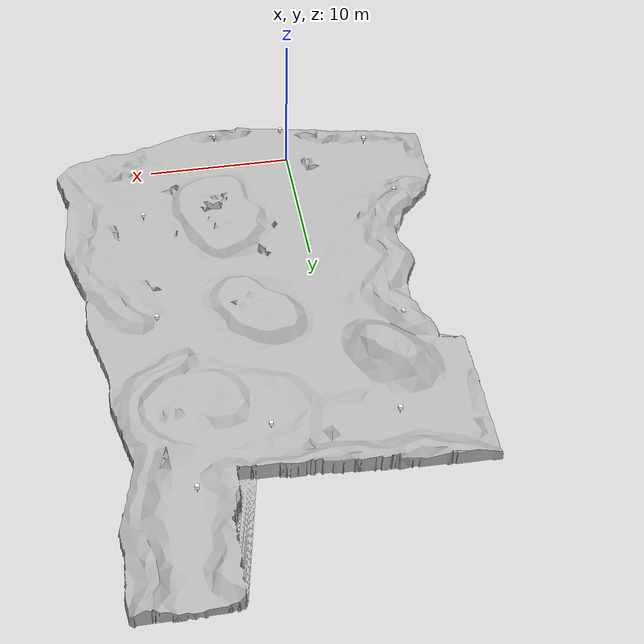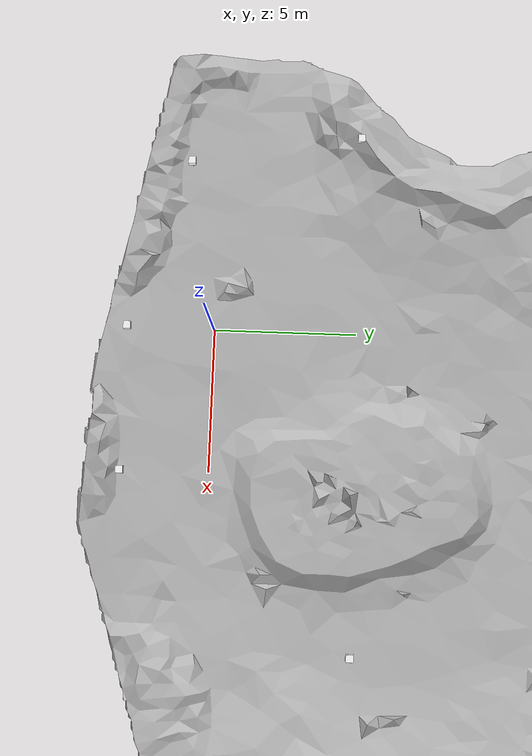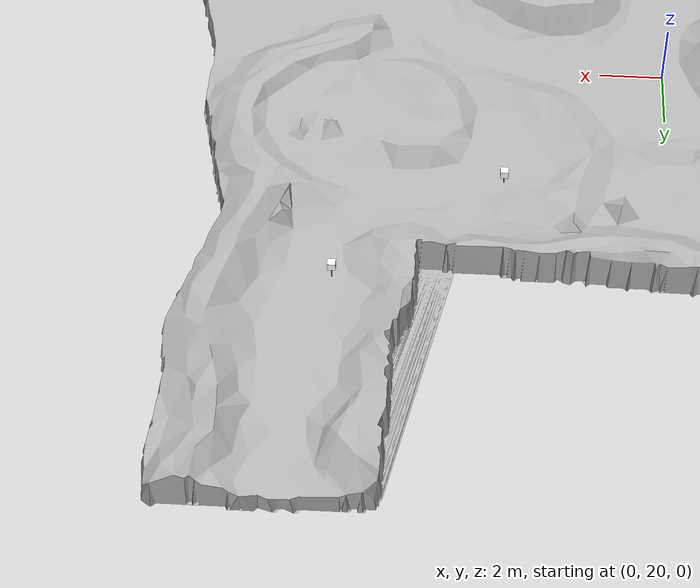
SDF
<?xml version="1.0"?>

<sdf version="1.6">
  <world name="marsyard">

    <include>
        <uri>model://marsyard2024</uri>
        <name>marsyard2024</name>
    </include>

    <physics name="default_physics" type="bullet">
      <max_step_size>0.01</max_step_size>
      <real_time_factor>1.0</real_time_factor>
      <real_time_update_rate>100</real_time_update_rate>
      <ode>
        <solver>
          <type>quick</type>
          <iterations>20</iterations>
          <sor>1.3</sor>
        </solver>
        <constraints>
          <cfm>0.0001</cfm>
          <erp>0.2</erp>
          <contact_max_correcting_vel>10</contact_max_correcting_vel>
          <contact_surface_layer>0.001</contact_surface_layer>
        </constraints>
      </ode>
    </physics>

    <scene>
        <ambient>0.8 0.8 0.8 1</ambient>
        <background>0 0 0 1</background>
        <grid>0</grid>
        <shadows>0</shadows>
    </scene>

    <plugin filename="gz-sim-contact-system" name="gz::sim::systems::Contact" />
    <plugin filename="gz-sim-imu-system" name="gz::sim::systems::Imu" />
    <plugin filename="gz-sim-physics-system" name="gz::sim::systems::Physics" />
    <plugin filename="gz-sim-scene-broadcaster-system" name="gz::sim::systems::SceneBroadcaster" />
    <plugin filename="gz-sim-sensors-system" name="gz::sim::systems::Sensors" />
    <plugin filename="gz-sim-user-commands-system" name="gz::sim::systems::UserCommands" />

    <light type="directional" name="sun">
      <cast_shadows>false</cast_shadows>
      <pose>0 20 20 0.1 0.1 0</pose>
      <diffuse>1 1 1 1</diffuse>
      <specular>1 1 1 1</specular>
      <attenuation>
        <range>300</range>
        <constant>0.9</constant>
        <linear>0.01</linear>
        <quadratic>0.001</quadratic>
      </attenuation>
      <direction>0.1 0.1 -1</direction>
    </light>

    <!-- South -->
    <include>
      <uri>model://aruco_marker_0</uri>
      <name>marker_0</name>
      <pose>0 -3 0 0 0 0</pose>
    </include>
    <include>
      <uri>model://aruco_marker_1</uri>
      <name>marker_1</name>
      <pose>5 -3 0 0 0 0</pose>
    </include>

    <!-- West -->
    <include>
      <uri>model://aruco_marker_2</uri>
      <name>marker_2</name>
      <pose>-7 5 0 0 0 -1.5708</pose>
    </include>
    <include>
      <uri>model://aruco_marker_3</uri>
      <name>marker_3</name>
      <pose>-5 17 0 0 0 -1.5708</pose>
    </include>

    <!-- North -->
    <include>
      <uri>model://aruco_marker_4</uri>
      <name>marker_4</name>
      <pose>-3 25 0 0 0 3.14159</pose>
    </include>
    <include>
      <uri>model://aruco_marker_5</uri>
      <name>marker_5</name>
      <pose>5 25 0 0 0 3.14159</pose>
    </include>

    <!-- East -->
    <include>
      <uri>model://aruco_marker_6</uri>
      <name>marker_6</name>
      <pose>11 15 0 0 0 1.5708</pose>
    </include>
    <include>
      <uri>model://aruco_marker_7</uri>
      <name>marker_7</name>
      <pose>11 5 0 0 0 1.5708</pose>
    </include>

    <!-- NE -->
    <include>
      <uri>model://aruco_marker_8</uri>
      <name>marker_8</name>
      <pose>10 29 0 0 0 3.14159</pose>
    </include>

    <!-- SW -->
    <include>
      <uri>model://aruco_marker_9</uri>
      <name>marker_9</name>
      <pose>-6 -1 0 0 0 0</pose>
    </include>

  </world>
</sdf>

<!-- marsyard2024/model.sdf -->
<sdf version="1.6">

<model name="marsyard2024">
  <static>true</static>
  <link name="scene_link">

    <!-- Visual -->
    <visual name="visual">
      <geometry>
        <mesh>
          <uri>model://marsyard2024/meshes/marsyard2024_processed.dae</uri>
        </mesh>
      </geometry>
    </visual>

    <!-- Collision -->
    <collision name="collision">
      <geometry>
        <mesh>
          <uri>model://marsyard2024/meshes/marsyard2024_collision.stl</uri>
        </mesh>
      </geometry>
      <surface>
        <contact>
          <ode>
            <max_vel>0.1</max_vel>
            <min_depth>0.001</min_depth>
          </ode>
        </contact>
      </surface>
    </collision>

  </link>
</model>

</sdf>

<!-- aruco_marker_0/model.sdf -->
<sdf version="1.6">
  <model name="aruco_marker_0">
    <static>true</static>
    <link name="link">

      <!-- عصاية -->
      <visual name="pole">
        <pose>0 0 0.2 0 0 0</pose>
        <geometry>
          <cylinder>
            <radius>0.015</radius>
            <length>0.4</length>
          </cylinder>
        </geometry>
        <material>
          <ambient>0.6 0.4 0.2 1</ambient>
          <diffuse>0.6 0.4 0.2 1</diffuse>
        </material>
      </visual>

      <!-- البوكس الأبيض -->
      <visual name="box">
        <pose>0 0 0.55 0 0 0</pose>
        <geometry>
          <box>
            <size>0.25 0.25 0.25</size>
          </box>
        </geometry>
        <material>
          <ambient>1 1 1 1</ambient>
          <diffuse>1 1 1 1</diffuse>
        </material>
      </visual>

      <!-- وجه أمامي +Y -->
      <visual name="face_front">
        <pose>0 -0.126 0.55 0 0 0</pose>
        <geometry><box><size>0.24 0.001 0.24</size></box></geometry>
        <material>
          <diffuse>1 1 1 1</diffuse>
          <pbr><metal>
            <albedo_map>model://aruco_marker_0/meshes/marker_0.png</albedo_map>
          </metal></pbr>
        </material>
      </visual>

      <!-- وجه خلفي -Y -->
      <visual name="face_back">
        <pose>0 0.126 0.55 0 0 3.14159</pose>
        <geometry><box><size>0.24 0.001 0.24</size></box></geometry>
        <material>
          <diffuse>1 1 1 1</diffuse>
          <pbr><metal>
            <albedo_map>model://aruco_marker_0/meshes/marker_0.png</albedo_map>
          </metal></pbr>
        </material>
      </visual>

      <!-- وجه يمين +X -->
      <visual name="face_right">
        <pose>0.126 0 0.55 0 0 1.5708</pose>
        <geometry><box><size>0.24 0.001 0.24</size></box></geometry>
        <material>
          <diffuse>1 1 1 1</diffuse>
          <pbr><metal>
            <albedo_map>model://aruco_marker_0/meshes/marker_0.png</albedo_map>
          </metal></pbr>
        </material>
      </visual>

      <!-- وجه شمال -X -->
      <visual name="face_left">
        <pose>-0.126 0 0.55 0 0 -1.5708</pose>
        <geometry><box><size>0.24 0.001 0.24</size></box></geometry>
        <material>
          <diffuse>1 1 1 1</diffuse>
          <pbr><metal>
            <albedo_map>model://aruco_marker_0/meshes/marker_0.png</albedo_map>
          </metal></pbr>
        </material>
      </visual>

    </link>
  </model>
</sdf>

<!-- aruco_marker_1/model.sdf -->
<sdf version="1.6">
  <model name="aruco_marker_1">
    <static>true</static>
    <link name="link">

      <!-- عصاية -->
      <visual name="pole">
        <pose>0 0 0.2 0 0 0</pose>
        <geometry>
          <cylinder>
            <radius>0.015</radius>
            <length>0.4</length>
          </cylinder>
        </geometry>
        <material>
          <ambient>0.6 0.4 0.2 1</ambient>
          <diffuse>0.6 0.4 0.2 1</diffuse>
        </material>
      </visual>

      <!-- البوكس الأبيض -->
      <visual name="box">
        <pose>0 0 0.55 0 0 0</pose>
        <geometry>
          <box>
            <size>0.25 0.25 0.25</size>
          </box>
        </geometry>
        <material>
          <ambient>1 1 1 1</ambient>
          <diffuse>1 1 1 1</diffuse>
        </material>
      </visual>

      <!-- وجه أمامي +Y -->
      <visual name="face_front">
        <pose>0 -0.126 0.55 0 0 0</pose>
        <geometry><box><size>0.24 0.001 0.24</size></box></geometry>
        <material>
          <diffuse>1 1 1 1</diffuse>
          <pbr><metal>
            <albedo_map>model://aruco_marker_1/meshes/marker_1.png</albedo_map>
          </metal></pbr>
        </material>
      </visual>

      <!-- وجه خلفي -Y -->
      <visual name="face_back">
        <pose>0 0.126 0.55 0 0 3.14159</pose>
        <geometry><box><size>0.24 0.001 0.24</size></box></geometry>
        <material>
          <diffuse>1 1 1 1</diffuse>
          <pbr><metal>
            <albedo_map>model://aruco_marker_1/meshes/marker_1.png</albedo_map>
          </metal></pbr>
        </material>
      </visual>

      <!-- وجه يمين +X -->
      <visual name="face_right">
        <pose>0.126 0 0.55 0 0 1.5708</pose>
        <geometry><box><size>0.24 0.001 0.24</size></box></geometry>
        <material>
          <diffuse>1 1 1 1</diffuse>
          <pbr><metal>
            <albedo_map>model://aruco_marker_1/meshes/marker_1.png</albedo_map>
          </metal></pbr>
        </material>
      </visual>

      <!-- وجه شمال -X -->
      <visual name="face_left">
        <pose>-0.126 0 0.55 0 0 -1.5708</pose>
        <geometry><box><size>0.24 0.001 0.24</size></box></geometry>
        <material>
          <diffuse>1 1 1 1</diffuse>
          <pbr><metal>
            <albedo_map>model://aruco_marker_1/meshes/marker_1.png</albedo_map>
          </metal></pbr>
        </material>
      </visual>

    </link>
  </model>
</sdf>

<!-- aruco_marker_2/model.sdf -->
<sdf version="1.6">
  <model name="aruco_marker_2">
    <static>true</static>
    <link name="link">

      <!-- عصاية -->
      <visual name="pole">
        <pose>0 0 0.2 0 0 0</pose>
        <geometry>
          <cylinder>
            <radius>0.015</radius>
            <length>0.4</length>
          </cylinder>
        </geometry>
        <material>
          <ambient>0.6 0.4 0.2 1</ambient>
          <diffuse>0.6 0.4 0.2 1</diffuse>
        </material>
      </visual>

      <!-- البوكس الأبيض -->
      <visual name="box">
        <pose>0 0 0.55 0 0 0</pose>
        <geometry>
          <box>
            <size>0.25 0.25 0.25</size>
          </box>
        </geometry>
        <material>
          <ambient>1 1 1 1</ambient>
          <diffuse>1 1 1 1</diffuse>
        </material>
      </visual>

      <!-- وجه أمامي +Y -->
      <visual name="face_front">
        <pose>0 -0.126 0.55 0 0 0</pose>
        <geometry><box><size>0.24 0.001 0.24</size></box></geometry>
        <material>
          <diffuse>1 1 1 1</diffuse>
          <pbr><metal>
            <albedo_map>model://aruco_marker_2/meshes/marker_2.png</albedo_map>
          </metal></pbr>
        </material>
      </visual>

      <!-- وجه خلفي -Y -->
      <visual name="face_back">
        <pose>0 0.126 0.55 0 0 3.14159</pose>
        <geometry><box><size>0.24 0.001 0.24</size></box></geometry>
        <material>
          <diffuse>1 1 1 1</diffuse>
          <pbr><metal>
            <albedo_map>model://aruco_marker_2/meshes/marker_2.png</albedo_map>
          </metal></pbr>
        </material>
      </visual>

      <!-- وجه يمين +X -->
      <visual name="face_right">
        <pose>0.126 0 0.55 0 0 1.5708</pose>
        <geometry><box><size>0.24 0.001 0.24</size></box></geometry>
        <material>
          <diffuse>1 1 1 1</diffuse>
          <pbr><metal>
            <albedo_map>model://aruco_marker_2/meshes/marker_2.png</albedo_map>
          </metal></pbr>
        </material>
      </visual>

      <!-- وجه شمال -X -->
      <visual name="face_left">
        <pose>-0.126 0 0.55 0 0 -1.5708</pose>
        <geometry><box><size>0.24 0.001 0.24</size></box></geometry>
        <material>
          <diffuse>1 1 1 1</diffuse>
          <pbr><metal>
            <albedo_map>model://aruco_marker_2/meshes/marker_2.png</albedo_map>
          </metal></pbr>
        </material>
      </visual>

    </link>
  </model>
</sdf>

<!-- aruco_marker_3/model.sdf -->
<sdf version="1.6">
  <model name="aruco_marker_3">
    <static>true</static>
    <link name="link">

      <!-- عصاية -->
      <visual name="pole">
        <pose>0 0 0.2 0 0 0</pose>
        <geometry>
          <cylinder>
            <radius>0.015</radius>
            <length>0.4</length>
          </cylinder>
        </geometry>
        <material>
          <ambient>0.6 0.4 0.2 1</ambient>
          <diffuse>0.6 0.4 0.2 1</diffuse>
        </material>
      </visual>

      <!-- البوكس الأبيض -->
      <visual name="box">
        <pose>0 0 0.55 0 0 0</pose>
        <geometry>
          <box>
            <size>0.25 0.25 0.25</size>
          </box>
        </geometry>
        <material>
          <ambient>1 1 1 1</ambient>
          <diffuse>1 1 1 1</diffuse>
        </material>
      </visual>

      <!-- وجه أمامي +Y -->
      <visual name="face_front">
        <pose>0 -0.126 0.55 0 0 0</pose>
        <geometry><box><size>0.24 0.001 0.24</size></box></geometry>
        <material>
          <diffuse>1 1 1 1</diffuse>
          <pbr><metal>
            <albedo_map>model://aruco_marker_3/meshes/marker_3.png</albedo_map>
          </metal></pbr>
        </material>
      </visual>

      <!-- وجه خلفي -Y -->
      <visual name="face_back">
        <pose>0 0.126 0.55 0 0 3.14159</pose>
        <geometry><box><size>0.24 0.001 0.24</size></box></geometry>
        <material>
          <diffuse>1 1 1 1</diffuse>
          <pbr><metal>
            <albedo_map>model://aruco_marker_3/meshes/marker_3.png</albedo_map>
          </metal></pbr>
        </material>
      </visual>

      <!-- وجه يمين +X -->
      <visual name="face_right">
        <pose>0.126 0 0.55 0 0 1.5708</pose>
        <geometry><box><size>0.24 0.001 0.24</size></box></geometry>
        <material>
          <diffuse>1 1 1 1</diffuse>
          <pbr><metal>
            <albedo_map>model://aruco_marker_3/meshes/marker_3.png</albedo_map>
          </metal></pbr>
        </material>
      </visual>

      <!-- وجه شمال -X -->
      <visual name="face_left">
        <pose>-0.126 0 0.55 0 0 -1.5708</pose>
        <geometry><box><size>0.24 0.001 0.24</size></box></geometry>
        <material>
          <diffuse>1 1 1 1</diffuse>
          <pbr><metal>
            <albedo_map>model://aruco_marker_3/meshes/marker_3.png</albedo_map>
          </metal></pbr>
        </material>
      </visual>

    </link>
  </model>
</sdf>

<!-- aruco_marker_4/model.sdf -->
<sdf version="1.6">
  <model name="aruco_marker_4">
    <static>true</static>
    <link name="link">

      <!-- عصاية -->
      <visual name="pole">
        <pose>0 0 0.2 0 0 0</pose>
        <geometry>
          <cylinder>
            <radius>0.015</radius>
            <length>0.4</length>
          </cylinder>
        </geometry>
        <material>
          <ambient>0.6 0.4 0.2 1</ambient>
          <diffuse>0.6 0.4 0.2 1</diffuse>
        </material>
      </visual>

      <!-- البوكس الأبيض -->
      <visual name="box">
        <pose>0 0 0.55 0 0 0</pose>
        <geometry>
          <box>
            <size>0.25 0.25 0.25</size>
          </box>
        </geometry>
        <material>
          <ambient>1 1 1 1</ambient>
          <diffuse>1 1 1 1</diffuse>
        </material>
      </visual>

      <!-- وجه أمامي +Y -->
      <visual name="face_front">
        <pose>0 -0.126 0.55 0 0 0</pose>
        <geometry><box><size>0.24 0.001 0.24</size></box></geometry>
        <material>
          <diffuse>1 1 1 1</diffuse>
          <pbr><metal>
            <albedo_map>model://aruco_marker_4/meshes/marker_4.png</albedo_map>
          </metal></pbr>
        </material>
      </visual>

      <!-- وجه خلفي -Y -->
      <visual name="face_back">
        <pose>0 0.126 0.55 0 0 3.14159</pose>
        <geometry><box><size>0.24 0.001 0.24</size></box></geometry>
        <material>
          <diffuse>1 1 1 1</diffuse>
          <pbr><metal>
            <albedo_map>model://aruco_marker_4/meshes/marker_4.png</albedo_map>
          </metal></pbr>
        </material>
      </visual>

      <!-- وجه يمين +X -->
      <visual name="face_right">
        <pose>0.126 0 0.55 0 0 1.5708</pose>
        <geometry><box><size>0.24 0.001 0.24</size></box></geometry>
        <material>
          <diffuse>1 1 1 1</diffuse>
          <pbr><metal>
            <albedo_map>model://aruco_marker_4/meshes/marker_4.png</albedo_map>
          </metal></pbr>
        </material>
      </visual>

      <!-- وجه شمال -X -->
      <visual name="face_left">
        <pose>-0.126 0 0.55 0 0 -1.5708</pose>
        <geometry><box><size>0.24 0.001 0.24</size></box></geometry>
        <material>
          <diffuse>1 1 1 1</diffuse>
          <pbr><metal>
            <albedo_map>model://aruco_marker_4/meshes/marker_4.png</albedo_map>
          </metal></pbr>
        </material>
      </visual>

    </link>
  </model>
</sdf>

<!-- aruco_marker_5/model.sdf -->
<sdf version="1.6">
  <model name="aruco_marker_5">
    <static>true</static>
    <link name="link">

      <!-- عصاية -->
      <visual name="pole">
        <pose>0 0 0.2 0 0 0</pose>
        <geometry>
          <cylinder>
            <radius>0.015</radius>
            <length>0.4</length>
          </cylinder>
        </geometry>
        <material>
          <ambient>0.6 0.4 0.2 1</ambient>
          <diffuse>0.6 0.4 0.2 1</diffuse>
        </material>
      </visual>

      <!-- البوكس الأبيض -->
      <visual name="box">
        <pose>0 0 0.55 0 0 0</pose>
        <geometry>
          <box>
            <size>0.25 0.25 0.25</size>
          </box>
        </geometry>
        <material>
          <ambient>1 1 1 1</ambient>
          <diffuse>1 1 1 1</diffuse>
        </material>
      </visual>

      <!-- وجه أمامي +Y -->
      <visual name="face_front">
        <pose>0 -0.126 0.55 0 0 0</pose>
        <geometry><box><size>0.24 0.001 0.24</size></box></geometry>
        <material>
          <diffuse>1 1 1 1</diffuse>
          <pbr><metal>
            <albedo_map>model://aruco_marker_5/meshes/marker_5.png</albedo_map>
          </metal></pbr>
        </material>
      </visual>

      <!-- وجه خلفي -Y -->
      <visual name="face_back">
        <pose>0 0.126 0.55 0 0 3.14159</pose>
        <geometry><box><size>0.24 0.001 0.24</size></box></geometry>
        <material>
          <diffuse>1 1 1 1</diffuse>
          <pbr><metal>
            <albedo_map>model://aruco_marker_5/meshes/marker_5.png</albedo_map>
          </metal></pbr>
        </material>
      </visual>

      <!-- وجه يمين +X -->
      <visual name="face_right">
        <pose>0.126 0 0.55 0 0 1.5708</pose>
        <geometry><box><size>0.24 0.001 0.24</size></box></geometry>
        <material>
          <diffuse>1 1 1 1</diffuse>
          <pbr><metal>
            <albedo_map>model://aruco_marker_5/meshes/marker_5.png</albedo_map>
          </metal></pbr>
        </material>
      </visual>

      <!-- وجه شمال -X -->
      <visual name="face_left">
        <pose>-0.126 0 0.55 0 0 -1.5708</pose>
        <geometry><box><size>0.24 0.001 0.24</size></box></geometry>
        <material>
          <diffuse>1 1 1 1</diffuse>
          <pbr><metal>
            <albedo_map>model://aruco_marker_5/meshes/marker_5.png</albedo_map>
          </metal></pbr>
        </material>
      </visual>

    </link>
  </model>
</sdf>

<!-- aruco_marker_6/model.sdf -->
<sdf version="1.6">
  <model name="aruco_marker_6">
    <static>true</static>
    <link name="link">

      <!-- عصاية -->
      <visual name="pole">
        <pose>0 0 0.2 0 0 0</pose>
        <geometry>
          <cylinder>
            <radius>0.015</radius>
            <length>0.4</length>
          </cylinder>
        </geometry>
        <material>
          <ambient>0.6 0.4 0.2 1</ambient>
          <diffuse>0.6 0.4 0.2 1</diffuse>
        </material>
      </visual>

      <!-- البوكس الأبيض -->
      <visual name="box">
        <pose>0 0 0.55 0 0 0</pose>
        <geometry>
          <box>
            <size>0.25 0.25 0.25</size>
          </box>
        </geometry>
        <material>
          <ambient>1 1 1 1</ambient>
          <diffuse>1 1 1 1</diffuse>
        </material>
      </visual>

      <!-- وجه أمامي +Y -->
      <visual name="face_front">
        <pose>0 -0.126 0.55 0 0 0</pose>
        <geometry><box><size>0.24 0.001 0.24</size></box></geometry>
        <material>
          <diffuse>1 1 1 1</diffuse>
          <pbr><metal>
            <albedo_map>model://aruco_marker_6/meshes/marker_6.png</albedo_map>
          </metal></pbr>
        </material>
      </visual>

      <!-- وجه خلفي -Y -->
      <visual name="face_back">
        <pose>0 0.126 0.55 0 0 3.14159</pose>
        <geometry><box><size>0.24 0.001 0.24</size></box></geometry>
        <material>
          <diffuse>1 1 1 1</diffuse>
          <pbr><metal>
            <albedo_map>model://aruco_marker_6/meshes/marker_6.png</albedo_map>
          </metal></pbr>
        </material>
      </visual>

      <!-- وجه يمين +X -->
      <visual name="face_right">
        <pose>0.126 0 0.55 0 0 1.5708</pose>
        <geometry><box><size>0.24 0.001 0.24</size></box></geometry>
        <material>
          <diffuse>1 1 1 1</diffuse>
          <pbr><metal>
            <albedo_map>model://aruco_marker_6/meshes/marker_6.png</albedo_map>
          </metal></pbr>
        </material>
      </visual>

      <!-- وجه شمال -X -->
      <visual name="face_left">
        <pose>-0.126 0 0.55 0 0 -1.5708</pose>
        <geometry><box><size>0.24 0.001 0.24</size></box></geometry>
        <material>
          <diffuse>1 1 1 1</diffuse>
          <pbr><metal>
            <albedo_map>model://aruco_marker_6/meshes/marker_6.png</albedo_map>
          </metal></pbr>
        </material>
      </visual>

    </link>
  </model>
</sdf>

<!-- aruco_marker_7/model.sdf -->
<sdf version="1.6">
  <model name="aruco_marker_7">
    <static>true</static>
    <link name="link">

      <!-- عصاية -->
      <visual name="pole">
        <pose>0 0 0.2 0 0 0</pose>
        <geometry>
          <cylinder>
            <radius>0.015</radius>
            <length>0.4</length>
          </cylinder>
        </geometry>
        <material>
          <ambient>0.6 0.4 0.2 1</ambient>
          <diffuse>0.6 0.4 0.2 1</diffuse>
        </material>
      </visual>

      <!-- البوكس الأبيض -->
      <visual name="box">
        <pose>0 0 0.55 0 0 0</pose>
        <geometry>
          <box>
            <size>0.25 0.25 0.25</size>
          </box>
        </geometry>
        <material>
          <ambient>1 1 1 1</ambient>
          <diffuse>1 1 1 1</diffuse>
        </material>
      </visual>

      <!-- وجه أمامي +Y -->
      <visual name="face_front">
        <pose>0 -0.126 0.55 0 0 0</pose>
        <geometry><box><size>0.24 0.001 0.24</size></box></geometry>
        <material>
          <diffuse>1 1 1 1</diffuse>
          <pbr><metal>
            <albedo_map>model://aruco_marker_7/meshes/marker_7.png</albedo_map>
          </metal></pbr>
        </material>
      </visual>

      <!-- وجه خلفي -Y -->
      <visual name="face_back">
        <pose>0 0.126 0.55 0 0 3.14159</pose>
        <geometry><box><size>0.24 0.001 0.24</size></box></geometry>
        <material>
          <diffuse>1 1 1 1</diffuse>
          <pbr><metal>
            <albedo_map>model://aruco_marker_7/meshes/marker_7.png</albedo_map>
          </metal></pbr>
        </material>
      </visual>

      <!-- وجه يمين +X -->
      <visual name="face_right">
        <pose>0.126 0 0.55 0 0 1.5708</pose>
        <geometry><box><size>0.24 0.001 0.24</size></box></geometry>
        <material>
          <diffuse>1 1 1 1</diffuse>
          <pbr><metal>
            <albedo_map>model://aruco_marker_7/meshes/marker_7.png</albedo_map>
          </metal></pbr>
        </material>
      </visual>

      <!-- وجه شمال -X -->
      <visual name="face_left">
        <pose>-0.126 0 0.55 0 0 -1.5708</pose>
        <geometry><box><size>0.24 0.001 0.24</size></box></geometry>
        <material>
          <diffuse>1 1 1 1</diffuse>
          <pbr><metal>
            <albedo_map>model://aruco_marker_7/meshes/marker_7.png</albedo_map>
          </metal></pbr>
        </material>
      </visual>

    </link>
  </model>
</sdf>

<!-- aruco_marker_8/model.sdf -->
<sdf version="1.6">
  <model name="aruco_marker_8">
    <static>true</static>
    <link name="link">

      <!-- عصاية -->
      <visual name="pole">
        <pose>0 0 0.2 0 0 0</pose>
        <geometry>
          <cylinder>
            <radius>0.015</radius>
            <length>0.4</length>
          </cylinder>
        </geometry>
        <material>
          <ambient>0.6 0.4 0.2 1</ambient>
          <diffuse>0.6 0.4 0.2 1</diffuse>
        </material>
      </visual>

      <!-- البوكس الأبيض -->
      <visual name="box">
        <pose>0 0 0.55 0 0 0</pose>
        <geometry>
          <box>
            <size>0.25 0.25 0.25</size>
          </box>
        </geometry>
        <material>
          <ambient>1 1 1 1</ambient>
          <diffuse>1 1 1 1</diffuse>
        </material>
      </visual>

      <!-- وجه أمامي +Y -->
      <visual name="face_front">
        <pose>0 -0.126 0.55 0 0 0</pose>
        <geometry><box><size>0.24 0.001 0.24</size></box></geometry>
        <material>
          <diffuse>1 1 1 1</diffuse>
          <pbr><metal>
            <albedo_map>model://aruco_marker_8/meshes/marker_8.png</albedo_map>
          </metal></pbr>
        </material>
      </visual>

      <!-- وجه خلفي -Y -->
      <visual name="face_back">
        <pose>0 0.126 0.55 0 0 3.14159</pose>
        <geometry><box><size>0.24 0.001 0.24</size></box></geometry>
        <material>
          <diffuse>1 1 1 1</diffuse>
          <pbr><metal>
            <albedo_map>model://aruco_marker_8/meshes/marker_8.png</albedo_map>
          </metal></pbr>
        </material>
      </visual>

      <!-- وجه يمين +X -->
      <visual name="face_right">
        <pose>0.126 0 0.55 0 0 1.5708</pose>
        <geometry><box><size>0.24 0.001 0.24</size></box></geometry>
        <material>
          <diffuse>1 1 1 1</diffuse>
          <pbr><metal>
            <albedo_map>model://aruco_marker_8/meshes/marker_8.png</albedo_map>
          </metal></pbr>
        </material>
      </visual>

      <!-- وجه شمال -X -->
      <visual name="face_left">
        <pose>-0.126 0 0.55 0 0 -1.5708</pose>
        <geometry><box><size>0.24 0.001 0.24</size></box></geometry>
        <material>
          <diffuse>1 1 1 1</diffuse>
          <pbr><metal>
            <albedo_map>model://aruco_marker_8/meshes/marker_8.png</albedo_map>
          </metal></pbr>
        </material>
      </visual>

    </link>
  </model>
</sdf>

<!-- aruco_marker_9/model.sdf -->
<sdf version="1.6">
  <model name="aruco_marker_9">
    <static>true</static>
    <link name="link">

      <!-- عصاية -->
      <visual name="pole">
        <pose>0 0 0.2 0 0 0</pose>
        <geometry>
          <cylinder>
            <radius>0.015</radius>
            <length>0.4</length>
          </cylinder>
        </geometry>
        <material>
          <ambient>0.6 0.4 0.2 1</ambient>
          <diffuse>0.6 0.4 0.2 1</diffuse>
        </material>
      </visual>

      <!-- البوكس الأبيض -->
      <visual name="box">
        <pose>0 0 0.55 0 0 0</pose>
        <geometry>
          <box>
            <size>0.25 0.25 0.25</size>
          </box>
        </geometry>
        <material>
          <ambient>1 1 1 1</ambient>
          <diffuse>1 1 1 1</diffuse>
        </material>
      </visual>

      <!-- وجه أمامي +Y -->
      <visual name="face_front">
        <pose>0 -0.126 0.55 0 0 0</pose>
        <geometry><box><size>0.24 0.001 0.24</size></box></geometry>
        <material>
          <diffuse>1 1 1 1</diffuse>
          <pbr><metal>
            <albedo_map>model://aruco_marker_9/meshes/marker_9.png</albedo_map>
          </metal></pbr>
        </material>
      </visual>

      <!-- وجه خلفي -Y -->
      <visual name="face_back">
        <pose>0 0.126 0.55 0 0 3.14159</pose>
        <geometry><box><size>0.24 0.001 0.24</size></box></geometry>
        <material>
          <diffuse>1 1 1 1</diffuse>
          <pbr><metal>
            <albedo_map>model://aruco_marker_9/meshes/marker_9.png</albedo_map>
          </metal></pbr>
        </material>
      </visual>

      <!-- وجه يمين +X -->
      <visual name="face_right">
        <pose>0.126 0 0.55 0 0 1.5708</pose>
        <geometry><box><size>0.24 0.001 0.24</size></box></geometry>
        <material>
          <diffuse>1 1 1 1</diffuse>
          <pbr><metal>
            <albedo_map>model://aruco_marker_9/meshes/marker_9.png</albedo_map>
          </metal></pbr>
        </material>
      </visual>

      <!-- وجه شمال -X -->
      <visual name="face_left">
        <pose>-0.126 0 0.55 0 0 -1.5708</pose>
        <geometry><box><size>0.24 0.001 0.24</size></box></geometry>
        <material>
          <diffuse>1 1 1 1</diffuse>
          <pbr><metal>
            <albedo_map>model://aruco_marker_9/meshes/marker_9.png</albedo_map>
          </metal></pbr>
        </material>
      </visual>

    </link>
  </model>
</sdf>
